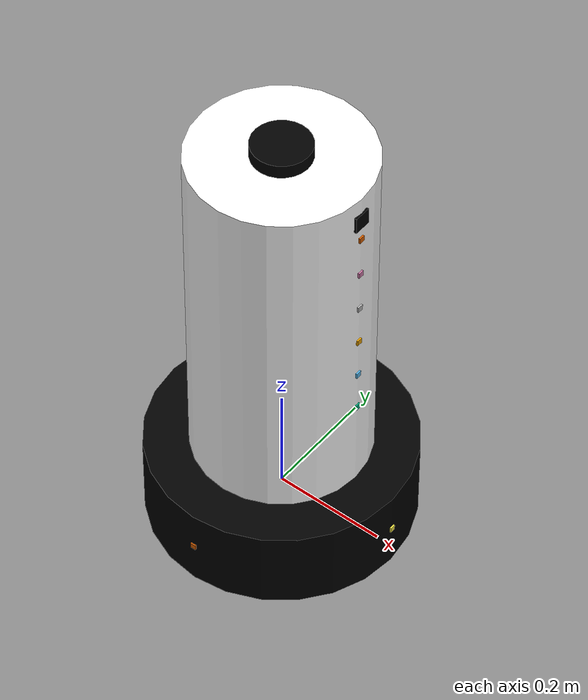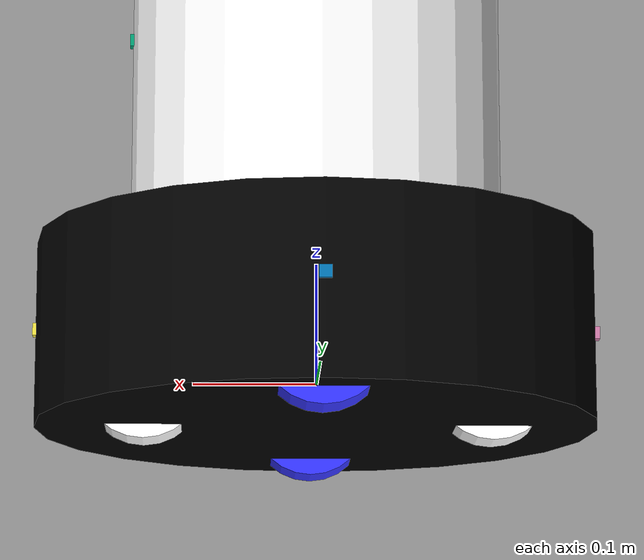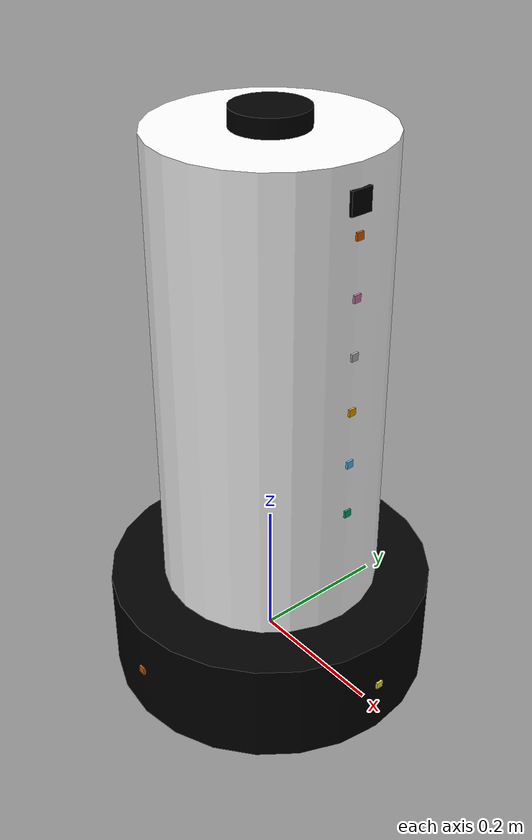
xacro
<?xml version="1.0"?>
<robot xmlns:xacro="http://www.ros.org/wiki/xacro" name="robot" >
    <xacro:include filename="gazebo_control.xacro" />
    <xacro:include filename="inertial_macros.xacro"/>
    <xacro:include filename="lidar.xacro"/>
    <xacro:include filename="camera.xacro"/>
    <xacro:arg name="use_ros2_control" default="false"/>
    <xacro:arg name="sim_mode" default="true"/>

    <material name="white">
        <color rgba="1 1 1 1" />
    </material>

    <material name="orange">
        <color rgba="1 0.3 0.1 1"/>
    </material>

    <material name="blue">
        <color rgba="0.2 0.2 1 1"/>
    </material>

    <material name="black">
        <color rgba="0 0 0 1"/>
    </material>

    <material name="red">
        <color rgba="1 0 0 1"/>
    </material>
    <!-- BASE LINK -->

    <link name="base_link">

    </link>

    <!-- CHASSIS LINK -->

    <joint name="chassis_joint" type="fixed">
        <parent link="base_link"/>
        <child link="chassis"/>
        <origin xyz="0 0 0"/>
    </joint>

    <link name="chassis">
        <visual>
            <origin xyz="0 0 0.060225"/>
            <geometry>
                <box size="0.28575 0.2794 0.1016"/>
            </geometry>
            <material name="white"/>
        </visual>
        <collision>
            <origin xyz="0 0 0.075"/>
            <geometry>
                <box size="0.28575 0.2794 0.1016"/>
            </geometry>
        </collision>
        <xacro:inertial_box mass="0.5" x="0.3" y="0.3" z="0.15">
            <origin xyz="0.15 0 0.075" rpy="0 0 0"/>
        </xacro:inertial_box>
    </link>
    <gazebo reference="chassis">
        <material>Gazebo/White</material>
    </gazebo>

    <!-- BODY BASE LINK -->

    <joint name="body_base_joint" type="fixed">
        <parent link="chassis"/>
        <child link="body_base"/>
        <origin xyz="0 0 0"/>
    </joint>

    <link name="body_base">
        <visual>
            <origin xyz="0 0 0.04"/>
            <geometry>
                <cylinder radius="0.2286" length="0.1524"/>
            </geometry>
            <material name="black"/>
        </visual>
        <collision>
            <origin xyz="0 0 0.060225"/>
            <geometry>
                <cylinder radius="0.2286" length="0.1524"/>
            </geometry>
        </collision>
        <xacro:inertial_cylinder mass="0.1" length="0.1524" radius="0.2286">
            <origin xyz="0 0 0" rpy="0 0 0"/>
        </xacro:inertial_cylinder>
    </link>
    <gazebo reference="body_base">
        <material>Gazebo/Black</material>
    </gazebo>

    <!-- BODY LINK -->

    <joint name="body_joint" type="fixed">
        <parent link="chassis"/>
        <child link="body"/>
        <origin xyz="0 0 0.1905"/>
    </joint>

    <link name="body">
        <visual>
            <origin xyz="0 0 0.1905"/>
            <geometry>
                <cylinder radius="0.1524" length="0.7493"/>
            </geometry>
            <material name="white"/>
        </visual>
        <collision>
            <origin xyz="0 0 0.1905"/>
            <geometry>
                <cylinder radius="0.1524" length="0.7493"/>
            </geometry>
        </collision>
        <xacro:inertial_cylinder mass="0.35" length="0.7493" radius="0.1524">
            <origin xyz="0 0 0" rpy="0 0 0"/>
        </xacro:inertial_cylinder>
    </link>
    <gazebo reference="chassis">
        <material>Gazebo/White</material>
    </gazebo>

    <!-- LEFT WHEEL LINK -->

    <joint name="left_wheel_joint" type="continuous">
        <parent link="base_link"/>
        <child link="left_wheel"/>
        <origin xyz="0 0.175 0" rpy="-1.57075 0 0" />
        <axis xyz="0 0 1"/>
    </joint>

    <link name="left_wheel">
        <visual>
            <geometry>
                <cylinder radius="0.05" length="0.04"/>
            </geometry>
            <material name="blue"/>
        </visual>
        <collision>
            <geometry>
                <cylinder radius="0.05" length="0.04"/>
            </geometry>
        </collision>
        <xacro:inertial_cylinder mass="0.1" length="0.04" radius="0.05">
            <origin xyz="0 0 0" rpy="0 0 0"/>
        </xacro:inertial_cylinder>
    </link>
    <gazebo reference="left_wheel">
        <material>Gazebo/Blue</material>
    </gazebo>

    <!-- RIGHT WHEEL LINK -->

    <joint name="right_wheel_joint" type="continuous">
        <parent link="base_link"/>
        <child link="right_wheel"/>
        <origin xyz="0 -0.175 0" rpy="1.57075 0 0" />
        <axis xyz="0 0 -1"/>
    </joint>

    <link name="right_wheel">
        <visual>
            <geometry>
                <cylinder radius="0.05" length="0.04"/>
            </geometry>
            <material name="blue"/>
        </visual>
        <collision>
            <geometry>
                <cylinder radius="0.05" length="0.04"/>
            </geometry>
        </collision>
        <xacro:inertial_cylinder mass="0.1" length="0.04" radius="0.05">
            <origin xyz="0 0 0" rpy="0 0 0"/>
        </xacro:inertial_cylinder>
    </link>
    <gazebo reference="right_wheel">
        <material>Gazebo/blue</material>
    </gazebo>

    <!-- FRONT CASTER WHEEL LINK -->

    <joint name="front_caster_base_joint" type="continuous">
        <parent link="base_link"/>
        <child link="front_caster_swivel"/>
        <origin xyz="0.14 0 0.0026" rpy="0 0 0" />
        <axis xyz="0 0 1"/>
    </joint>

    <link name="front_caster_swivel">
        <visual>
            <geometry>
                <cylinder radius="0.05" length="0.04"/>
            </geometry>
            <material name="white"/>
        </visual>
        <collision>
            <geometry>
                <cylinder radius="0.05" length="0.04"/>
            </geometry>
        </collision>
        <xacro:inertial_cylinder mass="0.1" length="0.04" radius="0.05">
            <origin xyz="0 0 0" rpy="0 0 0"/>
        </xacro:inertial_cylinder>
    </link>
    <joint name="front_caster_wheel_joint" type="continuous">
        <parent link="front_caster_swivel"/>
        <child link="front_caster_wheel"/>
        <origin xyz="0 0 0" rpy="1.57075 0 0" />
        <axis xyz="0 0 -1"/>
    </joint>

    <link name="front_caster_wheel">
        <visual>
            <geometry>
                <cylinder radius="0.05" length="0.04"/>
            </geometry>
            <material name="white"/>
        </visual>
        <collision>
            <geometry>
                <cylinder radius="0.05" length="0.04"/>
            </geometry>
        </collision>
        <xacro:inertial_cylinder mass="0.1" length="0.04" radius="0.05">
            <origin xyz="0 0 0" rpy="0 0 0"/>
        </xacro:inertial_cylinder>
    </link>
    <gazebo reference="front_caster_wheel">
        <material>Gazebo/Blue</material>
        <mu1 value="0.001"/>
        <mu2 value="0.001"/>
    </gazebo>

    <!-- REAR CASTER WHEEL LINK -->

    <joint name="rear_caster_base_joint" type="continuous">
        <parent link="base_link"/>
        <child link="rear_caster_swivel"/>
        <origin xyz="-0.142875 0 0.0026" rpy="0 0 0" />
        <axis xyz="0 0 1"/>
    </joint>

    <link name="rear_caster_swivel">
        <visual>
            <geometry>
                <cylinder radius="0.05" length="0.04"/>
            </geometry>
            <material name="white"/>
        </visual>
        <collision>
            <geometry>
                <cylinder radius="0.05" length="0.04"/>
            </geometry>
        </collision>
        <xacro:inertial_cylinder mass="0.1" length="0.04" radius="0.05">
            <origin xyz="0 0 0" rpy="0 0 0"/>
        </xacro:inertial_cylinder>
    </link>
    <joint name="rear_caster_wheel_joint" type="continuous">
        <parent link="rear_caster_swivel"/>
        <child link="rear_caster_wheel"/>
        <origin xyz="0 0 0" rpy="1.57075 0 0" />
        <axis xyz="0 0 -1"/>
    </joint>

    <link name="rear_caster_wheel">
        <visual>
            <geometry>
                <cylinder radius="0.05" length="0.04"/>
            </geometry>
            <material name="white"/>
        </visual>
        <collision>
            <geometry>
                <cylinder radius="0.05" length="0.04"/>
            </geometry>
        </collision>
        <xacro:inertial_cylinder mass="0.1" length="0.04" radius="0.05">
            <origin xyz="0 0 0" rpy="0 0 0"/>
        </xacro:inertial_cylinder>
    </link>
    <gazebo reference="caster_wheel">
        <material>Gazebo/Blue</material>
        <mu1 value="0.001"/>
        <mu2 value="0.001"/>
    </gazebo>

    <!-- TOP SONAR -->

    <!--SONAR 1-->
    <joint name="sonar_front_1_joint" type="fixed">
        <axis xyz="0 1 0" />
        <origin rpy="0 0 0" xyz="0.15 0 0.671" />
        <parent link="chassis"/>
        <child link="sonar_top_1"/>
    </joint>
    <link name="sonar_top_1">
        <collision>
        <origin xyz="0 0 0" rpy="0 0 0"/>
        <geometry>
            <box size="0.01 0.01 0.01"/>
        </geometry>
        </collision>
        <visual>
        <origin xyz="0 0 0" rpy="0 0 0"/>
        <geometry>
            <box size="0.01 0.01 0.01"/>
        </geometry>
        </visual>
        <inertial>
        <mass value="1e-5" />
        <origin xyz="0 0 0" rpy="0 0 0"/>
        <inertia ixx="1e-6" ixy="0" ixz="0" iyy="1e-6" iyz="0" izz="1e-6" />
        </inertial>
    </link>
    <gazebo reference="sonar_top_1">
    <sensor type="ray" name="TeraRanger">
        <pose>0 0 0 0 0 0</pose>
        <visualize>true</visualize>
        <update_rate>50</update_rate>
        <ray>
            <scan>
                <horizontal>
                <samples>10</samples>
                <resolution>1</resolution>
                <min_angle>-0.14835</min_angle>
                <max_angle>0.14835</max_angle>
                </horizontal>
                <vertical>
                <samples>10</samples>
                <resolution>1</resolution>
                <min_angle>-0.14835</min_angle>
                <max_angle>0.14835</max_angle>
                </vertical>
            </scan>
            <range>
                <min>0.01</min>
                <max>2</max>
                <resolution>0.02</resolution>
            </range>
        </ray>
        <plugin filename="libgazebo_ros_range.so" name="gazebo_ros_range">
            <gaussianNoise>0.005</gaussianNoise>
            <alwaysOn>true</alwaysOn>
            <updateRate>50</updateRate>
            <topicName>sensor/Range</topicName>
            <frameName>sonar_top_1</frameName>
            <radiation>INFRARED</radiation>
            <fov>0.2967</fov>
        </plugin>
    </sensor>
    </gazebo>
     <!--SONAR 2-->
    <joint name="sonar_front_2_joint" type="fixed">
        <axis xyz="0 1 0" />
        <origin rpy="0 0 0" xyz="0.15 0 0.5948" />
        <parent link="chassis"/>
        <child link="sonar_top_2"/>
    </joint>
    <link name="sonar_top_2">
        <collision>
        <origin xyz="0 0 0" rpy="0 0 0"/>
        <geometry>
            <box size="0.01 0.01 0.01"/>
        </geometry>
        </collision>
        <visual>
        <origin xyz="0 0 0" rpy="0 0 0"/>
        <geometry>
            <box size="0.01 0.01 0.01"/>
        </geometry>
        </visual>
        <inertial>
        <mass value="1e-5" />
        <origin xyz="0 0 0" rpy="0 0 0"/>
        <inertia ixx="1e-6" ixy="0" ixz="0" iyy="1e-6" iyz="0" izz="1e-6" />
        </inertial>
    </link>
    <gazebo reference="sonar_top_2">
        <sensor type="ray" name="TeraRanger">
            <pose>0 0 0 0 0 0</pose>
            <visualize>true</visualize>
            <update_rate>50</update_rate>
            <ray>
                <scan>
                    <horizontal>
                    <samples>10</samples>
                    <resolution>1</resolution>
                    <min_angle>-0.14835</min_angle>
                    <max_angle>0.14835</max_angle>
                    </horizontal>
                    <vertical>
                    <samples>10</samples>
                    <resolution>1</resolution>
                    <min_angle>-0.14835</min_angle>
                    <max_angle>0.14835</max_angle>
                    </vertical>
                </scan>
                <range>
                    <min>0.01</min>
                    <max>2</max>
                    <resolution>0.02</resolution>
                </range>
            </ray>
            <plugin filename="libgazebo_ros_range.so" name="ultrasonic_sensor_2">
                <gaussianNoise>0.005</gaussianNoise>
                <alwaysOn>true</alwaysOn>
                <updateRate>50</updateRate>
                <topicName>sensor_msgs/range_2</topicName>
                <frameName>sonar_top_2</frameName>
                <radiation>ultrasound</radiation>
                <fov>0.2967</fov>
            </plugin>
        </sensor>
    </gazebo>

     <!--SONAR 3-->
    <joint name="sonar_front_3_joint" type="fixed">
        <axis xyz="0 1 0" />
        <origin rpy="0 0 0" xyz="0.15 0 0.5186" />
        <parent link="chassis"/>
        <child link="sonar_top_3"/>
    </joint>
    <link name="sonar_top_3">
        <collision>
        <origin xyz="0 0 0" rpy="0 0 0"/>
        <geometry>
            <box size="0.01 0.01 0.01"/>
        </geometry>
        </collision>
        <visual>
        <origin xyz="0 0 0" rpy="0 0 0"/>
        <geometry>
            <box size="0.01 0.01 0.01"/>
        </geometry>
        </visual>
        <inertial>
        <mass value="1e-5" />
        <origin xyz="0 0 0" rpy="0 0 0"/>
        <inertia ixx="1e-6" ixy="0" ixz="0" iyy="1e-6" iyz="0" izz="1e-6" />
        </inertial>
    </link>
    <gazebo reference="sonar_top_3">
        <sensor type="ray" name="TeraRanger">
            <pose>0 0 0 0 0 0</pose>
            <visualize>true</visualize>
            <update_rate>50</update_rate>
            <ray>
                <scan>
                    <horizontal>
                    <samples>10</samples>
                    <resolution>1</resolution>
                    <min_angle>-0.14835</min_angle>
                    <max_angle>0.14835</max_angle>
                    </horizontal>
                    <vertical>
                    <samples>10</samples>
                    <resolution>1</resolution>
                    <min_angle>-0.14835</min_angle>
                    <max_angle>0.14835</max_angle>
                    </vertical>
                </scan>
                <range>
                    <min>0.01</min>
                    <max>2</max>
                    <resolution>0.02</resolution>
                </range>
            </ray>
            <plugin filename="libgazebo_ros_range.so" name="ultrasonic_sensor_3">
                <gaussianNoise>0.005</gaussianNoise>
                <alwaysOn>true</alwaysOn>
                <updateRate>50</updateRate>
                <topicName>sensor_msgs/range_3</topicName>
                <frameName>sonar_top</frameName>
                <radiation>ultrasound</radiation>
                <fov>0.2967</fov>
            </plugin>
        </sensor>
    </gazebo>

     <!--SONAR 4-->
    <joint name="sonar_front_4_joint" type="fixed">
        <axis xyz="0 1 0" />
        <origin rpy="0 0 0" xyz="0.15 0 0.4424" />
        <parent link="chassis"/>
        <child link="sonar_top_4"/>
    </joint>
    <link name="sonar_top_4">
        <collision>
        <origin xyz="0 0 0" rpy="0 0 0"/>
        <geometry>
            <box size="0.01 0.01 0.01"/>
        </geometry>
        </collision>
        <visual>
        <origin xyz="0 0 0" rpy="0 0 0"/>
        <geometry>
            <box size="0.01 0.01 0.01"/>
        </geometry>
        </visual>
        <inertial>
        <mass value="1e-5" />
        <origin xyz="0 0 0" rpy="0 0 0"/>
        <inertia ixx="1e-6" ixy="0" ixz="0" iyy="1e-6" iyz="0" izz="1e-6" />
        </inertial>
    </link>
    <gazebo reference="sonar_top_4">
        <sensor type="ray" name="TeraRanger">
            <pose>0 0 0 0 0 0</pose>
            <visualize>true</visualize>
            <update_rate>50</update_rate>
            <ray>
                <scan>
                    <horizontal>
                    <samples>10</samples>
                    <resolution>1</resolution>
                    <min_angle>-0.14835</min_angle>
                    <max_angle>0.14835</max_angle>
                    </horizontal>
                    <vertical>
                    <samples>10</samples>
                    <resolution>1</resolution>
                    <min_angle>-0.14835</min_angle>
                    <max_angle>0.14835</max_angle>
                    </vertical>
                </scan>
                <range>
                    <min>0.01</min>
                    <max>2</max>
                    <resolution>0.02</resolution>
                </range>
            </ray>
            <plugin filename="libgazebo_ros_range.so" name="ultrasonic_sensor_4">
                <gaussianNoise>0.005</gaussianNoise>
                <alwaysOn>true</alwaysOn>
                <updateRate>50</updateRate>
                <topicName>sensor_msgs/range_4</topicName>
                <frameName>sonar_top</frameName>
                <radiation>ultrasound</radiation>
                <fov>0.2967</fov>
            </plugin>
        </sensor>
    </gazebo>

     <!--SONAR 5-->
    <joint name="sonar_front_5_joint" type="fixed">
        <axis xyz="0 1 0" />
        <origin rpy="0 0 0" xyz="0.15 0 0.3662" />
        <parent link="chassis"/>
        <child link="sonar_top_5"/>
    </joint>
    <link name="sonar_top_5">
        <collision>
        <origin xyz="0 0 0" rpy="0 0 0"/>
        <geometry>
            <box size="0.01 0.01 0.01"/>
        </geometry>
        </collision>
        <visual>
        <origin xyz="0 0 0" rpy="0 0 0"/>
        <geometry>
            <box size="0.01 0.01 0.01"/>
        </geometry>
        </visual>
        <inertial>
        <mass value="1e-5" />
        <origin xyz="0 0 0" rpy="0 0 0"/>
        <inertia ixx="1e-6" ixy="0" ixz="0" iyy="1e-6" iyz="0" izz="1e-6" />
        </inertial>
    </link>
    <gazebo reference="sonar_top_5">
        <sensor type="ray" name="TeraRanger">
            <pose>0 0 0 0 0 0</pose>
            <visualize>true</visualize>
            <update_rate>50</update_rate>
            <ray>
                <scan>
                    <horizontal>
                    <samples>10</samples>
                    <resolution>1</resolution>
                    <min_angle>-0.14835</min_angle>
                    <max_angle>0.14835</max_angle>
                    </horizontal>
                    <vertical>
                    <samples>10</samples>
                    <resolution>1</resolution>
                    <min_angle>-0.14835</min_angle>
                    <max_angle>0.14835</max_angle>
                    </vertical>
                </scan>
                <range>
                    <min>0.01</min>
                    <max>2</max>
                    <resolution>0.02</resolution>
                </range>
            </ray>
            <plugin filename="libgazebo_ros_range.so" name="ultrasonic_sensor_5">
                <gaussianNoise>0.005</gaussianNoise>
                <alwaysOn>true</alwaysOn>
                <updateRate>50</updateRate>
                <topicName>sensor_msgs/range_5</topicName>
                <frameName>sonar_top</frameName>
                <radiation>ultrasound</radiation>
                <fov>0.2967</fov>
            </plugin>
        </sensor>
    </gazebo>

     <!--SONAR 6-->
    <joint name="sonar_front_6_joint" type="fixed">
        <axis xyz="0 1 0" />
        <origin rpy="0 0 0" xyz="0.15 0 0.29" />
        <parent link="chassis"/>
        <child link="sonar_top_6"/>
    </joint>
    <link name="sonar_top_6">
        <collision>
        <origin xyz="0.15 0 0.29" rpy="0 0 0"/>
        <geometry>
            <box size="0.01 0.01 0.01"/>
        </geometry>
        </collision>
        <visual>
        <origin xyz="0 0 0" rpy="0 0 0"/>
        <geometry>
            <box size="0.01 0.01 0.01"/>
        </geometry>
        </visual>
        <inertial>
        <mass value="1e-5" />
        <origin xyz="0 0 0" rpy="0 0 0"/>
        <inertia ixx="1e-6" ixy="0" ixz="0" iyy="1e-6" iyz="0" izz="1e-6" />
        </inertial>
    </link>
    <gazebo reference="sonar_top_6">
        <sensor type="ray" name="TeraRanger">
            <pose>0 0 0 0 0 0</pose>
            <visualize>true</visualize>
            <update_rate>50</update_rate>
            <ray>
                <scan>
                    <horizontal>
                    <samples>10</samples>
                    <resolution>1</resolution>
                    <min_angle>-0.14835</min_angle>
                    <max_angle>0.14835</max_angle>
                    </horizontal>
                    <vertical>
                    <samples>10</samples>
                    <resolution>1</resolution>
                    <min_angle>-0.14835</min_angle>
                    <max_angle>0.14835</max_angle>
                    </vertical>
                </scan>
                <range>
                    <min>0.01</min>
                    <max>2</max>
                    <resolution>0.02</resolution>
                </range>
            </ray>
            <plugin filename="libgazebo_ros_range.so" name="ultrasonic_sensor_6">
                <gaussianNoise>0.005</gaussianNoise>
                <alwaysOn>true</alwaysOn>
                <updateRate>50</updateRate>
                <topicName>sensor_msgs/range_6</topicName>
                <frameName>sonar_top</frameName>
                <radiation>ultrasound</radiation>
                <fov>0.2967</fov>
            </plugin>
        </sensor>
    </gazebo>

     <!--SONAR BASE FRONT-->
    <joint name="sonar_front_joint" type="fixed">
        <axis xyz="0 1 0" />
        <origin rpy="0 0 0" xyz="0.2259 0 0.0438" />
        <parent link="chassis"/>
        <child link="sonar_front"/>
    </joint>
    <link name="sonar_front">
        <collision>
        <origin xyz="0.001975 0 0.0038" rpy="0 0 0"/>
        <geometry>
            <box size="0.01 0.01 0.01"/>
        </geometry>
        </collision>
        <visual>
        <origin xyz="0 0 0" rpy="0 0 0"/>
        <geometry>
            <box size="0.01 0.01 0.01"/>
        </geometry>
        </visual>
        <inertial>
        <mass value="1e-5" />
        <origin xyz="0 0 0" rpy="0 0 0"/>
        <inertia ixx="1e-6" ixy="0" ixz="0" iyy="1e-6" iyz="0" izz="1e-6" />
        </inertial>
    </link>
    <gazebo reference="sonar_front">
        <sensor type="ray" name="TeraRanger">
            <pose>0 0 0 0 0 0</pose>
            <visualize>true</visualize>
            <update_rate>50</update_rate>
            <ray>
                <scan>
                    <horizontal>
                    <samples>10</samples>
                    <resolution>1</resolution>
                    <min_angle>-0.14835</min_angle>
                    <max_angle>0.14835</max_angle>
                    </horizontal>
                    <vertical>
                    <samples>10</samples>
                    <resolution>1</resolution>
                    <min_angle>-0.14835</min_angle>
                    <max_angle>0.14835</max_angle>
                    </vertical>
                </scan>
                <range>
                    <min>0.01</min>
                    <max>2</max>
                    <resolution>0.02</resolution>
                </range>
            </ray>
            <plugin filename="libgazebo_ros_range.so" name="ultrasonic_sensor_7">
                <gaussianNoise>0.005</gaussianNoise>
                <alwaysOn>true</alwaysOn>
                <updateRate>50</updateRate>
                <topicName>sensor_msgs/range_front</topicName>
                <frameName>sonar_base</frameName>
                <radiation>ultrasound</radiation>
                <fov>0.2967</fov>
            </plugin>
        </sensor>
    </gazebo>

<!-- LEFT SONAR -->
    <joint name="sonar_left_joint" type="fixed">
        <axis xyz="0 1 0" />
        <origin rpy="0 0 1.57" xyz="0 0.2259 0.0438" />
        <parent link="chassis"/>
        <child link="base_sonar_left"/>
    </joint>
    <link name="base_sonar_left">
        <collision>
        <origin xyz="0 0 0" rpy="0 0 0"/>
        <geometry>
            <box size="0.01 0.01 0.01"/>
        </geometry>
        </collision>
        <visual>
        <origin xyz="0 0 0" rpy="0 0 0"/>
        <geometry>
            <box size="0.01 0.01 0.01"/>
        </geometry>
        </visual>
        <inertial>
        <mass value="1e-5" />
        <origin xyz="0 0 0" rpy="0 0 0"/>
        <inertia ixx="1e-6" ixy="0" ixz="0" iyy="1e-6" iyz="0" izz="1e-6" />
        </inertial>
    </link>
    <gazebo reference="base_sonar_left">
        <sensor type="ray" name="TeraRanger">
            <pose>0 0 0 0 0 0</pose>
            <visualize>true</visualize>
            <update_rate>50</update_rate>
            <ray>
                <scan>
                    <horizontal>
                    <samples>10</samples>
                    <resolution>1</resolution>
                    <min_angle>-0.14835</min_angle>
                    <max_angle>0.14835</max_angle>
                    </horizontal>
                    <vertical>
                    <samples>10</samples>
                    <resolution>1</resolution>
                    <min_angle>-0.14835</min_angle>
                    <max_angle>0.14835</max_angle>
                    </vertical>
                </scan>
                <range>
                    <min>0.01</min>
                    <max>2</max>
                    <resolution>0.02</resolution>
                </range>
            </ray>
            <plugin filename="libgazebo_ros_range.so" name="ultrasonic_sensor_8">
                <gaussianNoise>0.005</gaussianNoise>
                <alwaysOn>true</alwaysOn>
                <updateRate>50</updateRate>
                <topicName>sensor_msgs/range_left</topicName>
                <frameName>sonar_base</frameName>
                <radiation>ultrasound</radiation>
                <fov>0.2967</fov>
            </plugin>
        </sensor>
    </gazebo>

<!-- RIGHT SONAR  -->
    <joint name="sonar_right_joint" type="fixed">
        <axis xyz="0 1 0" />
        <origin rpy="0 0 -1.57" xyz="0 -0.2259 0.0438" />
        <parent link="chassis"/>
        <child link="base_sonar_right"/>
    </joint>
    <link name="base_sonar_right">
        <collision>
        <origin xyz="0 0 0" rpy="0 0 0"/>
        <geometry>
            <box size="0.01 0.01 0.01"/>
        </geometry>
        </collision>
        <visual>
        <origin xyz="0 0 0" rpy="0 0 0"/>
        <geometry>
            <box size="0.01 0.01 0.01"/>
        </geometry>
        </visual>
        <inertial>
        <mass value="1e-5" />
        <origin xyz="0 0 0" rpy="0 0 0"/>
        <inertia ixx="1e-6" ixy="0" ixz="0" iyy="1e-6" iyz="0" izz="1e-6" />
        </inertial>
    </link>
    <gazebo reference="base_sonar_right">
        <sensor type="ray" name="TeraRanger">
            <pose>0 0 0 0 0 0</pose>
            <visualize>true</visualize>
            <update_rate>50</update_rate>
            <ray>
                <scan>
                    <horizontal>
                    <samples>10</samples>
                    <resolution>1</resolution>
                    <min_angle>-0.14835</min_angle>
                    <max_angle>0.14835</max_angle>
                    </horizontal>
                    <vertical>
                    <samples>10</samples>
                    <resolution>1</resolution>
                    <min_angle>-0.14835</min_angle>
                    <max_angle>0.14835</max_angle>
                    </vertical>
                </scan>
                <range>
                    <min>0.01</min>
                    <max>2</max>
                    <resolution>0.02</resolution>
                </range>
            </ray>
            <plugin filename="libgazebo_ros_range.so" name="ultrasonic_sensor_9">
                <gaussianNoise>0.005</gaussianNoise>
                <alwaysOn>true</alwaysOn>
                <updateRate>50</updateRate>
                <topicName>sensor_msgs/range_right</topicName>
                <frameName>sonar_base</frameName>
                <radiation>ultrasound</radiation>
                <fov>0.2967</fov>
            </plugin>
        </sensor>
    </gazebo>

<!-- REAR SONAR  -->
    <joint name="sonar_rear_joint" type="fixed">
        <axis xyz="0 1 0" />
        <origin rpy="0 0 -3.14" xyz="-0.227 0 0.0438" />
        <parent link="chassis"/>
        <child link="base_sonar_rear"/>
    </joint>
    <link name="base_sonar_rear">
        <collision>
        <origin xyz="0 0 0" rpy="0 0 0"/>
        <geometry>
            <box size="0.01 0.01 0.01"/>
        </geometry>
        </collision>
        <visual>
        <origin xyz="0 0 0" rpy="0 0 0"/>
        <geometry>
            <box size="0.01 0.01 0.01"/>
        </geometry>
        </visual>
        <inertial>
        <mass value="1e-5" />
        <origin xyz="0 0 0" rpy="0 0 0"/>
        <inertia ixx="1e-6" ixy="0" ixz="0" iyy="1e-6" iyz="0" izz="1e-6" />
        </inertial>
    </link>
    <gazebo reference="base_sonar_rear">
        <sensor type="ray" name="TeraRanger">
            <pose>0 0 0 0 0 0</pose>
            <visualize>true</visualize>
            <update_rate>50</update_rate>
            <ray>
                <scan>
                    <horizontal>
                    <samples>10</samples>
                    <resolution>1</resolution>
                    <min_angle>-0.14835</min_angle>
                    <max_angle>0.14835</max_angle>
                    </horizontal>
                    <vertical>
                    <samples>10</samples>
                    <resolution>1</resolution>
                    <min_angle>-0.14835</min_angle>
                    <max_angle>0.14835</max_angle>
                    </vertical>
                </scan>
                <range>
                    <min>0.01</min>
                    <max>2</max>
                    <resolution>0.02</resolution>
                </range>
            </ray>
            <plugin filename="libgazebo_ros_range.so" name="ultrasonic_sensor_10">
                <gaussianNoise>0.005</gaussianNoise>
                <alwaysOn>true</alwaysOn>
                <updateRate>50</updateRate>
                <ros>
                    <remapping>~/out:=ultrasonic_sensor_10</remapping>
                </ros>
                <output_type>sensor_msgs/Range</output_type>
                <radiation_type>ultrasound</radiation_type>
                <frame_name>base_sonar_rear</frame_name>
                <fov>0.2967</fov>
            </plugin>
        </sensor>
    </gazebo>

</robot>

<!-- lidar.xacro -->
<robot xmlns:xacro="http://www.ros.org/wiki/xacro" >

    <joint name="laser_joint" type="fixed">
        <parent link="chassis"/>
        <child link="laser_frame"/>
        <origin xyz="0 0 0.76" rpy="0 0 0"/>
    </joint>

    <link name="laser_frame">
        <visual>
            <geometry>
                <cylinder radius="0.05" length="0.04"/>
            </geometry>
            <material name="black"/>
        </visual>
        <collision>
            <geometry>
                <cylinder radius="0.05" length="0.04"/>
            </geometry>
        </collision>
        <xacro:inertial_cylinder mass="0.1" length="0.04" radius="0.05">
            <origin xyz="0 0 0" rpy="0 0 0"/>
        </xacro:inertial_cylinder>
    </link>

    <gazebo reference="laser_frame">
        <material>Gazebo/Black</material>

        <sensor name="laser" type="ray">
            <pose> 0 0 0 0 0 0 </pose>
            <visualize>true</visualize>
            <update_rate>10</update_rate>
            <ray>
                <scan>
                    <horizontal>
                        <samples>360</samples>
                        <min_angle>-3.14</min_angle>
                        <max_angle>3.14</max_angle>
                    </horizontal>
                </scan>
                <range>
                    <min>0.3</min>
                    <max>12</max>
                </range>
            </ray>
            <plugin name="laser_controller" filename="libgazebo_ros_ray_sensor.so">
                <ros>
                    <argument>~/out:=scan</argument>
                </ros>
                <output_type>sensor_msgs/LaserScan</output_type>
                <frame_name>laser_frame</frame_name>
            </plugin>
        </sensor>
    </gazebo>

</robot>

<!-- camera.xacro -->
<robot xmlns:xacro="http://www.ros.org/wiki/xacro" >

    <joint name="camera_joint" type="fixed">
        <parent link="chassis"/>
        <child link="camera_link"/>
        <origin xyz="0.15 0 0.7112" rpy="0 0 0"/>
    </joint>

    <link name="camera_link">
        <visual>
            <geometry>
                <box size="0.010 0.03 0.03"/>
            </geometry>
            <material name="black"/>
        </visual>
    </link>

    <joint name="camera_optical_joint" type="fixed">
        <parent link="camera_link"/>
        <child link="camera_link_optical"/>
        <origin xyz="0 0 0" rpy="${-pi/2} 0 ${-pi/2}"/>
    </joint>

    <link name="camera_link_optical"></link>

    <gazebo reference="camera_link">
        <material>Gazebo/Black</material>

        <sensor name="camera" type="camera">
            <pose> 0 0 0 0 0 0 </pose>
            <visualize>true</visualize>
            <update_rate>10</update_rate>
            <camera>
                <horizontal_fov>1.089</horizontal_fov>
                <image>
                    <format>R8G8B8</format>
                    <width>640</width>
                    <height>480</height>
                </image>
                <clip>
                    <near>0.05</near>
                    <far>8.0</far>
                </clip>
            </camera>
            <plugin name="camera_controller" filename="libgazebo_ros_camera.so">
                <frame_name>camera_link_optical</frame_name>
            </plugin>
        </sensor>
    </gazebo>

</robot>
